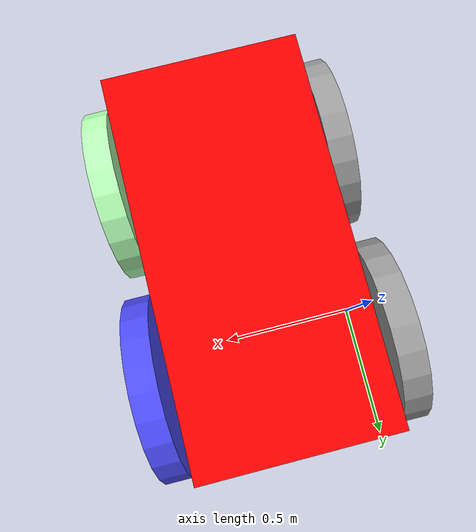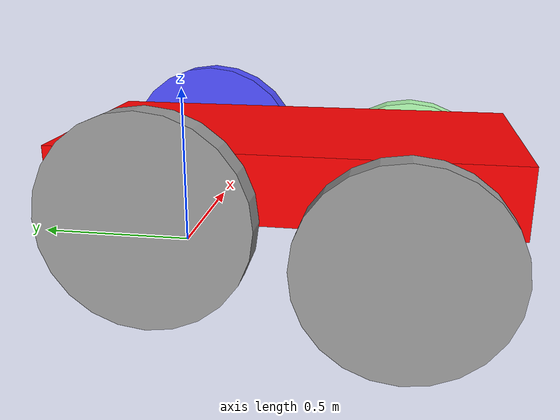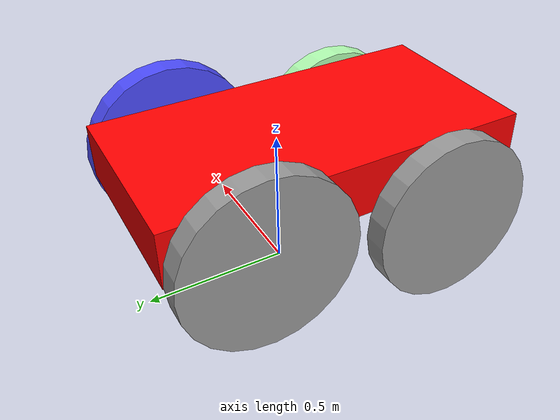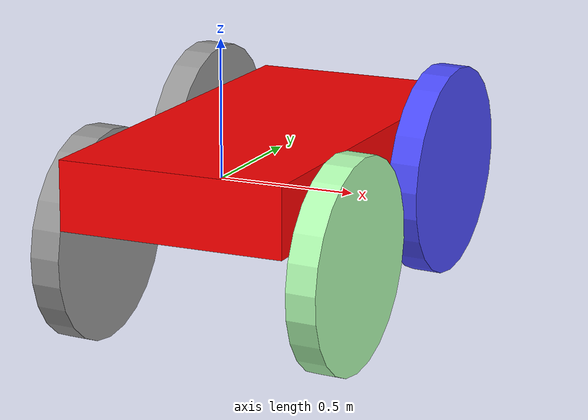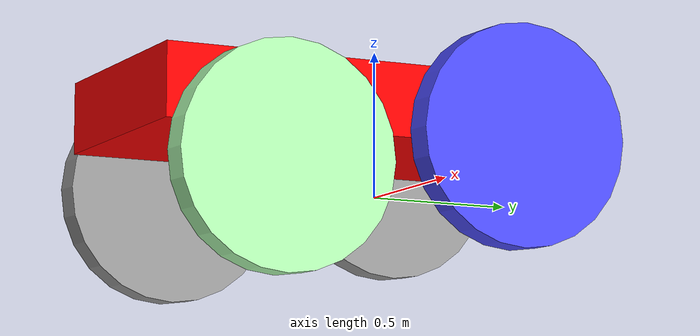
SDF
<?xml version='1.0'?>
<sdf version='1.6'>
  <model name='my_car2'>
    <link name='link_0'>
      <inertial>
        <mass>0.276053</mass>
        <inertia>
          <ixx>0.0553179</ixx>
          <ixy>0</ixy>
          <ixz>0</ixz>
          <iyy>0.0149267</iyy>
          <iyz>0</iyz>
          <izz>0.0677343</izz>
        </inertia>
        <pose frame=''>0 0 0 0 -0 0</pose>
      </inertial>
      <pose frame=''>0.341303 -0.303641 0.194258 0 -0 0</pose>
      <self_collide>0</self_collide>
      <enable_wind>0</enable_wind>
      <kinematic>0</kinematic>
      <gravity>1</gravity>
      <visual name='visual'>
        <pose frame=''>0 0 0 0 -0 0</pose>
        <geometry>
          <box>
            <size>0.770868 1.533 0.233602</size>
          </box>
        </geometry>
        <material>
          <lighting>1</lighting>
          <script>
            <uri>file://media/materials/scripts/gazebo.material</uri>
            <name>Gazebo/Grey</name>
          </script>
          <emissive>1 0 0 1</emissive>
          <diffuse>1 0 0 0</diffuse>
          <shader type='vertex'>
            <normal_map>__default__</normal_map>
          </shader>
          <ambient>0.3 0.3 0.3 1</ambient>
          <specular>1 0.01 0.01 1</specular>
        </material>
        <transparency>0</transparency>
        <cast_shadows>1</cast_shadows>
      </visual>
      <collision name='collision'>
        <laser_retro>0</laser_retro>
        <max_contacts>10</max_contacts>
        <pose frame=''>0 0 0 0 -0 0</pose>
        <geometry>
          <box>
            <size>0.770868 1.533 0.233602</size>
          </box>
        </geometry>
        <surface>
          <friction>
            <ode>
              <mu>1</mu>
              <mu2>1</mu2>
              <fdir1>0 0 0</fdir1>
              <slip1>0</slip1>
              <slip2>0</slip2>
            </ode>
            <torsional>
              <coefficient>1</coefficient>
              <patch_radius>0</patch_radius>
              <surface_radius>0</surface_radius>
              <use_patch_radius>1</use_patch_radius>
              <ode>
                <slip>0</slip>
              </ode>
            </torsional>
          </friction>
          <bounce>
            <restitution_coefficient>0</restitution_coefficient>
            <threshold>1e+06</threshold>
          </bounce>
          <contact>
            <collide_without_contact>0</collide_without_contact>
            <collide_without_contact_bitmask>1</collide_without_contact_bitmask>
            <collide_bitmask>1</collide_bitmask>
            <ode>
              <soft_cfm>0</soft_cfm>
              <soft_erp>0.2</soft_erp>
              <kp>1e+13</kp>
              <kd>1</kd>
              <max_vel>0.01</max_vel>
              <min_depth>0</min_depth>
            </ode>
            <bullet>
              <split_impulse>1</split_impulse>
              <split_impulse_penetration_threshold>-0.01</split_impulse_penetration_threshold>
              <soft_cfm>0</soft_cfm>
              <soft_erp>0.2</soft_erp>
              <kp>1e+13</kp>
              <kd>1</kd>
            </bullet>
          </contact>
        </surface>
      </collision>
    </link>
    <link name='link_1_clone'>
      <inertial>
        <mass>0.0516188</mass>
        <inertia>
          <ixx>0.00169164</ixx>
          <ixy>0</ixy>
          <ixz>0</ixz>
          <iyy>0.00169164</iyy>
          <iyz>0</iyz>
          <izz>0.00329539</izz>
        </inertia>
        <pose frame=''>0 0 0 0 -0 0</pose>
      </inertial>
      <pose frame=''>0.787793 0.105537 0.097767 3.14159 1.54127 3.14159</pose>
      <gravity>1</gravity>
      <self_collide>0</self_collide>
      <kinematic>0</kinematic>
      <enable_wind>0</enable_wind>
      <visual name='visual'>
        <pose frame=''>0 0 0 0 -0 0</pose>
        <geometry>
          <cylinder>
            <radius>0.357323</radius>
            <length>0.101057</length>
          </cylinder>
        </geometry>
        <material>
          <lighting>1</lighting>
          <script>
            <uri>file://media/materials/scripts/gazebo.material</uri>
            <name>Gazebo/Grey</name>
          </script>
          <shader type='vertex'>
            <normal_map>__default__</normal_map>
          </shader>
          <ambient>0.3 0.3 1 1</ambient>
          <diffuse>0.7 0.7 0.7 1</diffuse>
          <specular>0.01 0.01 0.01 1</specular>
          <emissive>0 0 0 1</emissive>
        </material>
        <transparency>0</transparency>
        <cast_shadows>1</cast_shadows>
      </visual>
      <collision name='collision'>
        <laser_retro>0</laser_retro>
        <max_contacts>10</max_contacts>
        <pose frame=''>0 0 0 0 -0 0</pose>
        <geometry>
          <cylinder>
            <radius>0.357323</radius>
            <length>0.101057</length>
          </cylinder>
        </geometry>
        <surface>
          <friction>
            <ode>
              <mu>1</mu>
              <mu2>1</mu2>
              <fdir1>0 0 0</fdir1>
              <slip1>0</slip1>
              <slip2>0</slip2>
            </ode>
            <torsional>
              <coefficient>1</coefficient>
              <patch_radius>0</patch_radius>
              <surface_radius>0</surface_radius>
              <use_patch_radius>1</use_patch_radius>
              <ode>
                <slip>0</slip>
              </ode>
            </torsional>
          </friction>
          <bounce>
            <restitution_coefficient>0</restitution_coefficient>
            <threshold>1e+06</threshold>
          </bounce>
          <contact>
            <collide_without_contact>0</collide_without_contact>
            <collide_without_contact_bitmask>1</collide_without_contact_bitmask>
            <collide_bitmask>1</collide_bitmask>
            <ode>
              <soft_cfm>0</soft_cfm>
              <soft_erp>0.2</soft_erp>
              <kp>1e+13</kp>
              <kd>1</kd>
              <max_vel>0.01</max_vel>
              <min_depth>0</min_depth>
            </ode>
            <bullet>
              <split_impulse>1</split_impulse>
              <split_impulse_penetration_threshold>-0.01</split_impulse_penetration_threshold>
              <soft_cfm>0</soft_cfm>
              <soft_erp>0.2</soft_erp>
              <kp>1e+13</kp>
              <kd>1</kd>
            </bullet>
          </contact>
        </surface>
      </collision>
    </link>
    <link name='link_1_clone_0'>
      <inertial>
        <mass>0.0516188</mass>
        <inertia>
          <ixx>0.00169164</ixx>
          <ixy>0</ixy>
          <ixz>0</ixz>
          <iyy>0.00169164</iyy>
          <iyz>0</iyz>
          <izz>0.00329539</izz>
        </inertia>
        <pose frame=''>0 0 0 0 -0 0</pose>
      </inertial>
      <pose frame=''>-0.105186 -0.712819 -0.024401 3.14159 1.54127 3.14159</pose>
      <gravity>1</gravity>
      <self_collide>0</self_collide>
      <kinematic>0</kinematic>
      <enable_wind>0</enable_wind>
      <visual name='visual'>
        <pose frame=''>0 0 0 0 -0 0</pose>
        <geometry>
          <cylinder>
            <radius>0.357323</radius>
            <length>0.101057</length>
          </cylinder>
        </geometry>
        <material>
          <lighting>1</lighting>
          <script>
            <uri>file://media/materials/scripts/gazebo.material</uri>
            <name>Gazebo/Grey</name>
          </script>
          <shader type='vertex'>
            <normal_map>__default__</normal_map>
          </shader>
          <ambient>0.3 0.3 0.3 1</ambient>
          <diffuse>0.7 0.7 0.7 1</diffuse>
          <specular>0.01 0.01 1 1</specular>
          <emissive>0 0 0 1</emissive>
        </material>
        <transparency>0</transparency>
        <cast_shadows>1</cast_shadows>
      </visual>
      <collision name='collision'>
        <laser_retro>0</laser_retro>
        <max_contacts>10</max_contacts>
        <pose frame=''>0 0 0 0 -0 0</pose>
        <geometry>
          <cylinder>
            <radius>0.357323</radius>
            <length>0.101057</length>
          </cylinder>
        </geometry>
        <surface>
          <friction>
            <ode>
              <mu>1</mu>
              <mu2>1</mu2>
              <fdir1>0 0 0</fdir1>
              <slip1>0</slip1>
              <slip2>0</slip2>
            </ode>
            <torsional>
              <coefficient>1</coefficient>
              <patch_radius>0</patch_radius>
              <surface_radius>0</surface_radius>
              <use_patch_radius>1</use_patch_radius>
              <ode>
                <slip>0</slip>
              </ode>
            </torsional>
          </friction>
          <bounce>
            <restitution_coefficient>0</restitution_coefficient>
            <threshold>1e+06</threshold>
          </bounce>
          <contact>
            <collide_without_contact>0</collide_without_contact>
            <collide_without_contact_bitmask>1</collide_without_contact_bitmask>
            <collide_bitmask>1</collide_bitmask>
            <ode>
              <soft_cfm>0</soft_cfm>
              <soft_erp>0.2</soft_erp>
              <kp>1e+13</kp>
              <kd>1</kd>
              <max_vel>0.01</max_vel>
              <min_depth>0</min_depth>
            </ode>
            <bullet>
              <split_impulse>1</split_impulse>
              <split_impulse_penetration_threshold>-0.01</split_impulse_penetration_threshold>
              <soft_cfm>0</soft_cfm>
              <soft_erp>0.2</soft_erp>
              <kp>1e+13</kp>
              <kd>1</kd>
            </bullet>
          </contact>
        </surface>
      </collision>
    </link>
    <link name='link_1_clone_1'>
      <inertial>
        <mass>0.0516188</mass>
        <inertia>
          <ixx>0.00169164</ixx>
          <ixy>0</ixy>
          <ixz>0</ixz>
          <iyy>0.00169164</iyy>
          <iyz>0</iyz>
          <izz>0.00329539</izz>
        </inertia>
        <pose frame=''>0 0 0 0 -0 0</pose>
      </inertial>
      <pose frame=''>0.787793 -0.712819 -0.024401 3.14159 1.54127 3.14159</pose>
      <gravity>1</gravity>
      <self_collide>0</self_collide>
      <kinematic>0</kinematic>
      <enable_wind>0</enable_wind>
      <visual name='visual'>
        <pose frame=''>0 0 0 0 -0 0</pose>
        <geometry>
          <cylinder>
            <radius>0.357323</radius>
            <length>0.101057</length>
          </cylinder>
        </geometry>
        <material>
          <lighting>1</lighting>
          <script>
            <uri>file://media/materials/scripts/gazebo.material</uri>
            <name>Gazebo/Grey</name>
          </script>
          <shader type='vertex'>
            <normal_map>__default__</normal_map>
          </shader>
          <ambient>0.3 1 0.3 1</ambient>
          <diffuse>0.7 1 0.7 1</diffuse>
          <specular>0.01 1 0.01 1</specular>
          <emissive>0 1 0 1</emissive>
        </material>
        <transparency>0</transparency>
        <cast_shadows>1</cast_shadows>
      </visual>
      <collision name='collision'>
        <laser_retro>0</laser_retro>
        <max_contacts>10</max_contacts>
        <pose frame=''>0 0 0 0 -0 0</pose>
        <geometry>
          <cylinder>
            <radius>0.357323</radius>
            <length>0.101057</length>
          </cylinder>
        </geometry>
        <surface>
          <friction>
            <ode>
              <mu>1</mu>
              <mu2>1</mu2>
              <fdir1>0 0 0</fdir1>
              <slip1>0</slip1>
              <slip2>0</slip2>
            </ode>
            <torsional>
              <coefficient>1</coefficient>
              <patch_radius>0</patch_radius>
              <surface_radius>0</surface_radius>
              <use_patch_radius>1</use_patch_radius>
              <ode>
                <slip>0</slip>
              </ode>
            </torsional>
          </friction>
          <bounce>
            <restitution_coefficient>0</restitution_coefficient>
            <threshold>1e+06</threshold>
          </bounce>
          <contact>
            <collide_without_contact>0</collide_without_contact>
            <collide_without_contact_bitmask>1</collide_without_contact_bitmask>
            <collide_bitmask>1</collide_bitmask>
            <ode>
              <soft_cfm>0</soft_cfm>
              <soft_erp>0.2</soft_erp>
              <kp>1e+13</kp>
              <kd>1</kd>
              <max_vel>0.01</max_vel>
              <min_depth>0</min_depth>
            </ode>
            <bullet>
              <split_impulse>1</split_impulse>
              <split_impulse_penetration_threshold>-0.01</split_impulse_penetration_threshold>
              <soft_cfm>0</soft_cfm>
              <soft_erp>0.2</soft_erp>
              <kp>1e+13</kp>
              <kd>1</kd>
            </bullet>
          </contact>
        </surface>
      </collision>
    </link>
    <link name='link_1_clone_clone'>
      <inertial>
        <mass>0.0516188</mass>
        <inertia>
          <ixx>0.00169164</ixx>
          <ixy>0</ixy>
          <ixz>0</ixz>
          <iyy>0.00169164</iyy>
          <iyz>0</iyz>
          <izz>0.00329539</izz>
        </inertia>
        <pose frame=''>0 0 0 0 -0 0</pose>
      </inertial>
      <pose frame=''>-0.105186 0.105537 0.097767 3.14159 1.54127 3.14159</pose>
      <gravity>1</gravity>
      <self_collide>0</self_collide>
      <kinematic>0</kinematic>
      <enable_wind>0</enable_wind>
      <visual name='visual'>
        <pose frame=''>0 0 0 0 -0 0</pose>
        <geometry>
          <cylinder>
            <radius>0.357323</radius>
            <length>0.101057</length>
          </cylinder>
        </geometry>
        <material>
          <lighting>1</lighting>
          <script>
            <uri>file://media/materials/scripts/gazebo.material</uri>
            <name>Gazebo/Grey</name>
          </script>
          <shader type='vertex'>
            <normal_map>__default__</normal_map>
          </shader>
          <ambient>0.3 0.3 0.3 1</ambient>
          <diffuse>0.7 0.7 0.7 1</diffuse>
          <specular>0.01 1 0.01 1</specular>
          <emissive>0 1 0 1</emissive>
        </material>
        <transparency>0</transparency>
        <cast_shadows>1</cast_shadows>
      </visual>
      <collision name='collision'>
        <laser_retro>0</laser_retro>
        <max_contacts>10</max_contacts>
        <pose frame=''>0 0 0 0 -0 0</pose>
        <geometry>
          <cylinder>
            <radius>0.357323</radius>
            <length>0.101057</length>
          </cylinder>
        </geometry>
        <surface>
          <friction>
            <ode>
              <mu>1</mu>
              <mu2>1</mu2>
              <fdir1>0 0 0</fdir1>
              <slip1>0</slip1>
              <slip2>0</slip2>
            </ode>
            <torsional>
              <coefficient>1</coefficient>
              <patch_radius>0</patch_radius>
              <surface_radius>0</surface_radius>
              <use_patch_radius>1</use_patch_radius>
              <ode>
                <slip>0</slip>
              </ode>
            </torsional>
          </friction>
          <bounce>
            <restitution_coefficient>0</restitution_coefficient>
            <threshold>1e+06</threshold>
          </bounce>
          <contact>
            <collide_without_contact>0</collide_without_contact>
            <collide_without_contact_bitmask>1</collide_without_contact_bitmask>
            <collide_bitmask>1</collide_bitmask>
            <ode>
              <soft_cfm>0</soft_cfm>
              <soft_erp>0.2</soft_erp>
              <kp>1e+13</kp>
              <kd>1</kd>
              <max_vel>0.01</max_vel>
              <min_depth>0</min_depth>
            </ode>
            <bullet>
              <split_impulse>1</split_impulse>
              <split_impulse_penetration_threshold>-0.01</split_impulse_penetration_threshold>
              <soft_cfm>0</soft_cfm>
              <soft_erp>0.2</soft_erp>
              <kp>1e+13</kp>
              <kd>1</kd>
            </bullet>
          </contact>
        </surface>
      </collision>
    </link>
    <joint name='link_0_JOINT_2' type='revolute'>
      <parent>link_0</parent>
      <child>link_1_clone_1</child>
      <pose frame=''>0 0 0 0 -0 0</pose>
      <axis>
        <xyz>0 0 1</xyz>
        <use_parent_model_frame>0</use_parent_model_frame>
        <limit>
          <lower>-1.79769e+308</lower>
          <upper>1.79769e+308</upper>
          <effort>-1</effort>
          <velocity>-1</velocity>
        </limit>
        <dynamics>
          <spring_reference>0</spring_reference>
          <spring_stiffness>0</spring_stiffness>
          <damping>0</damping>
          <friction>0</friction>
        </dynamics>
      </axis>
      <physics>
        <ode>
          <limit>
            <cfm>0</cfm>
            <erp>0.2</erp>
          </limit>
          <suspension>
            <cfm>0</cfm>
            <erp>0.2</erp>
          </suspension>
        </ode>
      </physics>
    </joint>
    <joint name='link_0_JOINT_3' type='revolute'>
      <parent>link_0</parent>
      <child>link_1_clone</child>
      <pose frame=''>0 0 0 0 -0 0</pose>
      <axis>
        <xyz>0 0 1</xyz>
        <use_parent_model_frame>0</use_parent_model_frame>
        <limit>
          <lower>-1.79769e+308</lower>
          <upper>1.79769e+308</upper>
          <effort>-1</effort>
          <velocity>-1</velocity>
        </limit>
        <dynamics>
          <spring_reference>0</spring_reference>
          <spring_stiffness>0</spring_stiffness>
          <damping>0</damping>
          <friction>0</friction>
        </dynamics>
      </axis>
      <physics>
        <ode>
          <limit>
            <cfm>0</cfm>
            <erp>0.2</erp>
          </limit>
          <suspension>
            <cfm>0</cfm>
            <erp>0.2</erp>
          </suspension>
        </ode>
      </physics>
    </joint>
    <joint name='link_0_JOINT_4' type='revolute'>
      <parent>link_0</parent>
      <child>link_1_clone_0</child>
      <pose frame=''>0 0 0 0 -0 0</pose>
      <axis>
        <xyz>0 0 1</xyz>
        <use_parent_model_frame>0</use_parent_model_frame>
        <limit>
          <lower>-1.79769e+308</lower>
          <upper>1.79769e+308</upper>
          <effort>-1</effort>
          <velocity>-1</velocity>
        </limit>
        <dynamics>
          <spring_reference>0</spring_reference>
          <spring_stiffness>0</spring_stiffness>
          <damping>0</damping>
          <friction>0</friction>
        </dynamics>
      </axis>
      <physics>
        <ode>
          <limit>
            <cfm>0</cfm>
            <erp>0.2</erp>
          </limit>
          <suspension>
            <cfm>0</cfm>
            <erp>0.2</erp>
          </suspension>
        </ode>
      </physics>
    </joint>
    <joint name='link_0_JOINT_6' type='revolute'>
      <parent>link_0</parent>
      <child>link_1_clone_clone</child>
      <pose frame=''>0 0 0 0 -0 0</pose>
      <axis>
        <xyz>0 0 1</xyz>
        <use_parent_model_frame>0</use_parent_model_frame>
        <limit>
          <lower>-1.79769e+308</lower>
          <upper>1.79769e+308</upper>
          <effort>-1</effort>
          <velocity>-1</velocity>
        </limit>
        <dynamics>
          <spring_reference>0</spring_reference>
          <spring_stiffness>0</spring_stiffness>
          <damping>0</damping>
          <friction>0</friction>
        </dynamics>
      </axis>
      <physics>
        <ode>
          <limit>
            <cfm>0</cfm>
            <erp>0.2</erp>
          </limit>
          <suspension>
            <cfm>0</cfm>
            <erp>0.2</erp>
          </suspension>
        </ode>
      </physics>
    </joint>
    <static>0</static>
    <allow_auto_disable>1</allow_auto_disable>
  </model>
</sdf>
